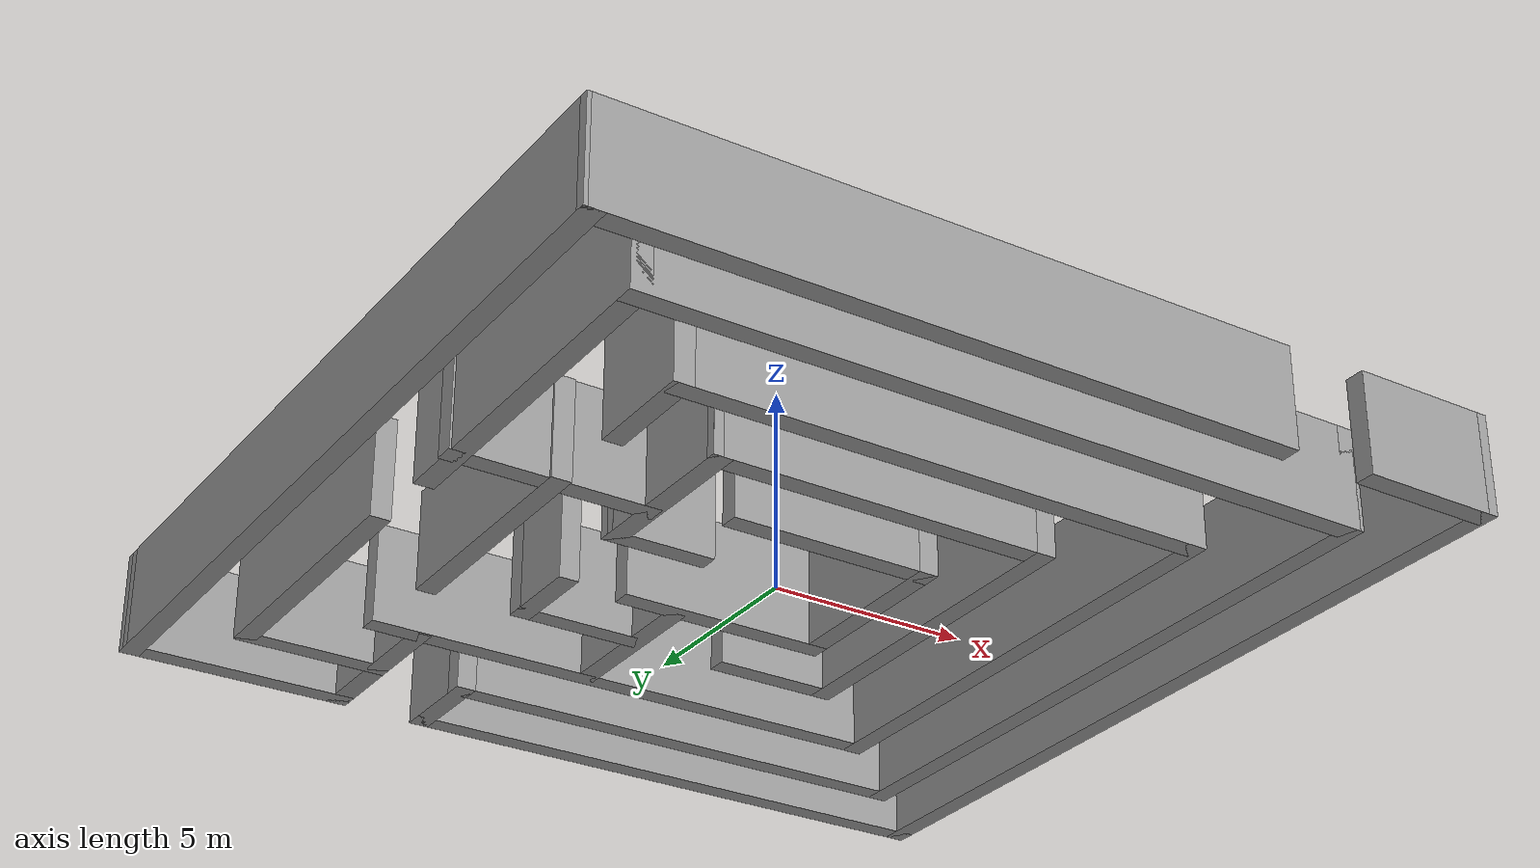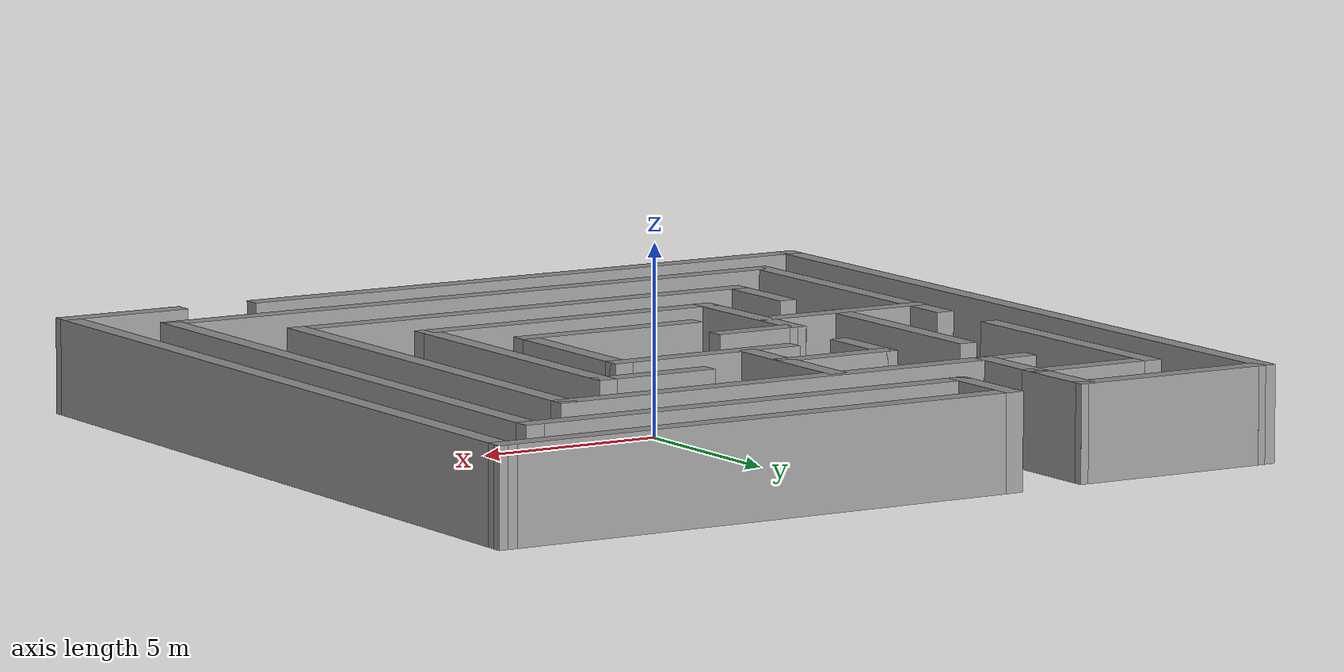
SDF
<?xml version='1.0'?>
<sdf version='1.7'>
  <model name='maze_1'>
    <model name='maze_1'>
      <pose>-0 -0 0 0 -0 0</pose>
      <link name='Wall_1'>
        <collision name='Wall_1_Collision'>
          <geometry>
            <box>
              <size>5.43 0.5 2.5</size>
            </box>
          </geometry>
          <pose>0 0 1.25 0 -0 0</pose>
        </collision>
        <visual name='Wall_1_Visual'>
          <pose>0 0 1.25 0 -0 0</pose>
          <geometry>
            <box>
              <size>5.43 0.5 2.5</size>
            </box>
          </geometry>
          <material>
            <script>
              <uri>file://media/materials/scripts/gazebo.material</uri>
              <name>Gazebo/Grey</name>
            </script>
            <ambient>1 1 1 1</ambient>
          </material>
          <meta>
            <layer>0</layer>
          </meta>
        </visual>
        <pose>0.007699 2.3205 0 0 -0 0</pose>
      </link>
      <link name='Wall_10'>
        <collision name='Wall_10_Collision'>
          <geometry>
            <box>
              <size>2.59977 0.5 2.5</size>
            </box>
          </geometry>
          <pose>0 0 1.25 0 -0 0</pose>
        </collision>
        <visual name='Wall_10_Visual'>
          <pose>0 0 1.25 0 -0 0</pose>
          <geometry>
            <box>
              <size>2.59977 0.5 2.5</size>
            </box>
          </geometry>
          <material>
            <script>
              <uri>file://media/materials/scripts/gazebo.material</uri>
              <name>Gazebo/Grey</name>
            </script>
            <ambient>1 1 1 1</ambient>
          </material>
          <meta>
            <layer>0</layer>
          </meta>
        </visual>
        <pose>-3.2283 -0.2365 0 0 -0 3.14159</pose>
      </link>
      <link name='Wall_11'>
        <collision name='Wall_11_Collision'>
          <geometry>
            <box>
              <size>4.60034 0.5 2.5</size>
            </box>
          </geometry>
          <pose>0 0 1.25 0 -0 0</pose>
        </collision>
        <visual name='Wall_11_Visual'>
          <pose>0 0 1.25 0 -0 0</pose>
          <geometry>
            <box>
              <size>4.60034 0.5 2.5</size>
            </box>
          </geometry>
          <material>
            <script>
              <uri>file://media/materials/scripts/gazebo.material</uri>
              <name>Gazebo/Grey</name>
            </script>
            <ambient>1 1 1 1</ambient>
          </material>
          <meta>
            <layer>0</layer>
          </meta>
        </visual>
        <pose>-4.2518 -2.2865 0 0 -0 -1.55787</pose>
      </link>
      <link name='Wall_12'>
        <collision name='Wall_12_Collision'>
          <geometry>
            <box>
              <size>8.85013 0.5 2.5</size>
            </box>
          </geometry>
          <pose>0 0 1.25 0 -0 0</pose>
        </collision>
        <visual name='Wall_12_Visual'>
          <pose>0 0 1.25 0 -0 0</pose>
          <geometry>
            <box>
              <size>8.85013 0.5 2.5</size>
            </box>
          </geometry>
          <material>
            <script>
              <uri>file://media/materials/scripts/gazebo.material</uri>
              <name>Gazebo/Grey</name>
            </script>
            <ambient>1 1 1 1</ambient>
          </material>
          <meta>
            <layer>0</layer>
          </meta>
        </visual>
        <pose>-0.050301 -4.3365 0 0 -0 0</pose>
      </link>
      <link name='Wall_13'>
        <collision name='Wall_13_Collision'>
          <geometry>
            <box>
              <size>9.10033 0.5 2.5</size>
            </box>
          </geometry>
          <pose>0 0 1.25 0 -0 0</pose>
        </collision>
        <visual name='Wall_13_Visual'>
          <pose>0 0 1.25 0 -0 0</pose>
          <geometry>
            <box>
              <size>9.10033 0.5 2.5</size>
            </box>
          </geometry>
          <material>
            <script>
              <uri>file://media/materials/scripts/gazebo.material</uri>
              <name>Gazebo/Grey</name>
            </script>
            <ambient>1 1 1 1</ambient>
          </material>
          <meta>
            <layer>0</layer>
          </meta>
        </visual>
        <pose>4.1247 -0.0365 0 0 -0 1.5708</pose>
      </link>
      <link name='Wall_14'>
        <collision name='Wall_14_Collision'>
          <geometry>
            <box>
              <size>3.34987 0.5 2.5</size>
            </box>
          </geometry>
          <pose>0 0 1.25 0 -0 0</pose>
        </collision>
        <visual name='Wall_14_Visual'>
          <pose>0 0 1.25 0 -0 0</pose>
          <geometry>
            <box>
              <size>3.34987 0.5 2.5</size>
            </box>
          </geometry>
          <material>
            <script>
              <uri>file://media/materials/scripts/gazebo.material</uri>
              <name>Gazebo/Grey</name>
            </script>
            <ambient>1 1 1 1</ambient>
          </material>
          <meta>
            <layer>0</layer>
          </meta>
        </visual>
        <pose>2.6997 4.2635 0 0 -0 3.14159</pose>
      </link>
      <link name='Wall_16'>
        <collision name='Wall_16_Collision'>
          <geometry>
            <box>
              <size>2.35 0.5 2.5</size>
            </box>
          </geometry>
          <pose>0 0 1.25 0 -0 0</pose>
        </collision>
        <visual name='Wall_16_Visual'>
          <pose>0 0 1.25 0 -0 0</pose>
          <geometry>
            <box>
              <size>2.35 0.5 2.5</size>
            </box>
          </geometry>
          <material>
            <script>
              <uri>file://media/materials/scripts/gazebo.material</uri>
              <name>Gazebo/Grey</name>
            </script>
            <ambient>1 1 1 1</ambient>
          </material>
          <meta>
            <layer>0</layer>
          </meta>
        </visual>
        <pose>-4.1623 3.2805 0 0 -0 1.5708</pose>
      </link>
      <link name='Wall_17'>
        <collision name='Wall_17_Collision'>
          <geometry>
            <box>
              <size>3.35048 0.5 2.5</size>
            </box>
          </geometry>
          <pose>0 0 1.25 0 -0 0</pose>
        </collision>
        <visual name='Wall_17_Visual'>
          <pose>0 0 1.25 0 -0 0</pose>
          <geometry>
            <box>
              <size>3.35048 0.5 2.5</size>
            </box>
          </geometry>
          <material>
            <script>
              <uri>file://media/materials/scripts/gazebo.material</uri>
              <name>Gazebo/Grey</name>
            </script>
            <ambient>1 1 1 1</ambient>
          </material>
          <meta>
            <layer>0</layer>
          </meta>
        </visual>
        <pose>-2.7373 4.2055 0 0 -0 0</pose>
      </link>
      <link name='Wall_19'>
        <collision name='Wall_19_Collision'>
          <geometry>
            <box>
              <size>4.35048 0.5 2.5</size>
            </box>
          </geometry>
          <pose>0 0 1.25 0 -0 0</pose>
        </collision>
        <visual name='Wall_19_Visual'>
          <pose>0 0 1.25 0 -0 0</pose>
          <geometry>
            <box>
              <size>4.35048 0.5 2.5</size>
            </box>
          </geometry>
          <material>
            <script>
              <uri>file://media/materials/scripts/gazebo.material</uri>
              <name>Gazebo/Grey</name>
            </script>
            <ambient>1 1 1 1</ambient>
          </material>
          <meta>
            <layer>0</layer>
          </meta>
        </visual>
        <pose>-1.2263 4.5185 0 0 -0 1.5708</pose>
      </link>
      <link name='Wall_2'>
        <collision name='Wall_2_Collision'>
          <geometry>
            <box>
              <size>5.01231 0.5 2.5</size>
            </box>
          </geometry>
          <pose>0 0 1.25 0 -0 0</pose>
        </collision>
        <visual name='Wall_2_Visual'>
          <pose>0 0 1.25 0 -0 0</pose>
          <geometry>
            <box>
              <size>5.01231 0.5 2.5</size>
            </box>
          </geometry>
          <material>
            <script>
              <uri>file://media/materials/scripts/gazebo.material</uri>
              <name>Gazebo/Grey</name>
            </script>
            <ambient>1 1 1 1</ambient>
          </material>
          <meta>
            <layer>0</layer>
          </meta>
        </visual>
        <pose>2.4727 0.0645 0 0 -0 -1.5708</pose>
      </link>
      <link name='Wall_21'>
        <collision name='Wall_21_Collision'>
          <geometry>
            <box>
              <size>7.35 0.5 2.5</size>
            </box>
          </geometry>
          <pose>0 0 1.25 0 -0 0</pose>
        </collision>
        <visual name='Wall_21_Visual'>
          <pose>0 0 1.25 0 -0 0</pose>
          <geometry>
            <box>
              <size>7.35 0.5 2.5</size>
            </box>
          </geometry>
          <material>
            <script>
              <uri>file://media/materials/scripts/gazebo.material</uri>
              <name>Gazebo/Grey</name>
            </script>
            <ambient>1 1 1 1</ambient>
          </material>
          <meta>
            <layer>0</layer>
          </meta>
        </visual>
        <pose>-9.0023 5.3845 0 0 -0 1.5708</pose>
      </link>
      <link name='Wall_22'>
        <collision name='Wall_22_Collision'>
          <geometry>
            <box>
              <size>3.85 0.5 2.5</size>
            </box>
          </geometry>
          <pose>0 0 1.25 0 -0 0</pose>
        </collision>
        <visual name='Wall_22_Visual'>
          <pose>0 0 1.25 0 -0 0</pose>
          <geometry>
            <box>
              <size>3.85 0.5 2.5</size>
            </box>
          </geometry>
          <material>
            <script>
              <uri>file://media/materials/scripts/gazebo.material</uri>
              <name>Gazebo/Grey</name>
            </script>
            <ambient>1 1 1 1</ambient>
          </material>
          <meta>
            <layer>0</layer>
          </meta>
        </visual>
        <pose>-7.3273 8.8095 0 0 -0 0</pose>
      </link>
      <link name='Wall_23'>
        <collision name='Wall_23_Collision'>
          <geometry>
            <box>
              <size>2.60032 0.5 2.5</size>
            </box>
          </geometry>
          <pose>0 0 1.25 0 -0 0</pose>
        </collision>
        <visual name='Wall_23_Visual'>
          <pose>0 0 1.25 0 -0 0</pose>
          <geometry>
            <box>
              <size>2.60032 0.5 2.5</size>
            </box>
          </geometry>
          <material>
            <script>
              <uri>file://media/materials/scripts/gazebo.material</uri>
              <name>Gazebo/Grey</name>
            </script>
            <ambient>1 1 1 1</ambient>
          </material>
          <meta>
            <layer>0</layer>
          </meta>
        </visual>
        <pose>-5.6523 7.7595 0 0 -0 -1.5708</pose>
      </link>
      <link name='Wall_25'>
        <collision name='Wall_25_Collision'>
          <geometry>
            <box>
              <size>2.59969 0.5 2.5</size>
            </box>
          </geometry>
          <pose>0 0 1.25 0 -0 0</pose>
        </collision>
        <visual name='Wall_25_Visual'>
          <pose>0 0 1.25 0 -0 0</pose>
          <geometry>
            <box>
              <size>2.59969 0.5 2.5</size>
            </box>
          </geometry>
          <material>
            <script>
              <uri>file://media/materials/scripts/gazebo.material</uri>
              <name>Gazebo/Grey</name>
            </script>
            <ambient>1 1 1 1</ambient>
          </material>
          <meta>
            <layer>0</layer>
          </meta>
        </visual>
        <pose>-5.6523 9.8595 0 0 -0 1.5708</pose>
      </link>
      <link name='Wall_26'>
        <collision name='Wall_26_Collision'>
          <geometry>
            <box>
              <size>5.82705 0.5 2.5</size>
            </box>
          </geometry>
          <pose>0 0 1.25 0 -0 0</pose>
        </collision>
        <visual name='Wall_26_Visual'>
          <pose>0 0 1.25 0 -0 0</pose>
          <geometry>
            <box>
              <size>5.82705 0.5 2.5</size>
            </box>
          </geometry>
          <material>
            <script>
              <uri>file://media/materials/scripts/gazebo.material</uri>
              <name>Gazebo/Grey</name>
            </script>
            <ambient>1 1 1 1</ambient>
          </material>
          <meta>
            <layer>0</layer>
          </meta>
        </visual>
        <pose>-8.3158 10.921 0 0 -0 3.13727</pose>
      </link>
      <link name='Wall_27'>
        <collision name='Wall_27_Collision'>
          <geometry>
            <box>
              <size>22.3506 0.5 2.5</size>
            </box>
          </geometry>
          <pose>0 0 1.25 0 -0 0</pose>
        </collision>
        <visual name='Wall_27_Visual'>
          <pose>0 0 1.25 0 -0 0</pose>
          <geometry>
            <box>
              <size>22.3506 0.5 2.5</size>
            </box>
          </geometry>
          <material>
            <script>
              <uri>file://media/materials/scripts/gazebo.material</uri>
              <name>Gazebo/Grey</name>
            </script>
            <ambient>1 1 1 1</ambient>
          </material>
          <meta>
            <layer>0</layer>
          </meta>
        </visual>
        <pose>-10.9793 0.007 0 0 -0 -1.5708</pose>
      </link>
      <link name='Wall_28'>
        <collision name='Wall_28_Collision'>
          <geometry>
            <box>
              <size>16.8271 0.5 2.5</size>
            </box>
          </geometry>
          <pose>0 0 1.25 0 -0 0</pose>
        </collision>
        <visual name='Wall_28_Visual'>
          <pose>0 0 1.25 0 -0 0</pose>
          <geometry>
            <box>
              <size>16.8271 0.5 2.5</size>
            </box>
          </geometry>
          <material>
            <script>
              <uri>file://media/materials/scripts/gazebo.material</uri>
              <name>Gazebo/Grey</name>
            </script>
            <ambient>1 1 1 1</ambient>
          </material>
          <meta>
            <layer>0</layer>
          </meta>
        </visual>
        <pose>-2.8158 -10.9295 0 0 -0 -0.001347</pose>
      </link>
      <link name='Wall_3'>
        <collision name='Wall_3_Collision'>
          <geometry>
            <box>
              <size>5.35 0.5 2.5</size>
            </box>
          </geometry>
          <pose>0 0 1.25 0 -0 0</pose>
        </collision>
        <visual name='Wall_3_Visual'>
          <pose>0 0 1.25 0 -0 0</pose>
          <geometry>
            <box>
              <size>5.35 0.5 2.5</size>
            </box>
          </geometry>
          <material>
            <script>
              <uri>file://media/materials/scripts/gazebo.material</uri>
              <name>Gazebo/Grey</name>
            </script>
            <ambient>1 1 1 1</ambient>
          </material>
          <meta>
            <layer>0</layer>
          </meta>
        </visual>
        <pose>0.047699 -2.1915 0 0 -0 3.14159</pose>
      </link>
      <link name='Wall_30'>
        <collision name='Wall_30_Collision'>
          <geometry>
            <box>
              <size>9.1 0.5 2.5</size>
            </box>
          </geometry>
          <pose>0 0 1.25 0 -0 0</pose>
        </collision>
        <visual name='Wall_30_Visual'>
          <pose>0 0 1.25 0 -0 0</pose>
          <geometry>
            <box>
              <size>9.1 0.5 2.5</size>
            </box>
          </geometry>
          <material>
            <script>
              <uri>file://media/materials/scripts/gazebo.material</uri>
              <name>Gazebo/Grey</name>
            </script>
            <ambient>1 1 1 1</ambient>
          </material>
          <meta>
            <layer>0</layer>
          </meta>
        </visual>
        <pose>-8.8703 -4.6415 0 0 -0 -1.5708</pose>
      </link>
      <link name='Wall_31'>
        <collision name='Wall_31_Collision'>
          <geometry>
            <box>
              <size>18.35 0.5 2.5</size>
            </box>
          </geometry>
          <pose>0 0 1.25 0 -0 0</pose>
        </collision>
        <visual name='Wall_31_Visual'>
          <pose>0 0 1.25 0 -0 0</pose>
          <geometry>
            <box>
              <size>18.35 0.5 2.5</size>
            </box>
          </geometry>
          <material>
            <script>
              <uri>file://media/materials/scripts/gazebo.material</uri>
              <name>Gazebo/Grey</name>
            </script>
            <ambient>1 1 1 1</ambient>
          </material>
          <meta>
            <layer>0</layer>
          </meta>
        </visual>
        <pose>0.054699 -8.9415 0 0 -0 0</pose>
      </link>
      <link name='Wall_32'>
        <collision name='Wall_32_Collision'>
          <geometry>
            <box>
              <size>18.35 0.5 2.5</size>
            </box>
          </geometry>
          <pose>0 0 1.25 0 -0 0</pose>
        </collision>
        <visual name='Wall_32_Visual'>
          <pose>0 0 1.25 0 -0 0</pose>
          <geometry>
            <box>
              <size>18.35 0.5 2.5</size>
            </box>
          </geometry>
          <material>
            <script>
              <uri>file://media/materials/scripts/gazebo.material</uri>
              <name>Gazebo/Grey</name>
            </script>
            <ambient>1 1 1 1</ambient>
          </material>
          <meta>
            <layer>0</layer>
          </meta>
        </visual>
        <pose>8.9797 -0.0165 0 0 -0 1.5708</pose>
      </link>
      <link name='Wall_33'>
        <collision name='Wall_33_Collision'>
          <geometry>
            <box>
              <size>12.85 0.5 2.5</size>
            </box>
          </geometry>
          <pose>0 0 1.25 0 -0 0</pose>
        </collision>
        <visual name='Wall_33_Visual'>
          <pose>0 0 1.25 0 -0 0</pose>
          <geometry>
            <box>
              <size>12.85 0.5 2.5</size>
            </box>
          </geometry>
          <material>
            <script>
              <uri>file://media/materials/scripts/gazebo.material</uri>
              <name>Gazebo/Grey</name>
            </script>
            <ambient>1 1 1 1</ambient>
          </material>
          <meta>
            <layer>0</layer>
          </meta>
        </visual>
        <pose>2.8047 8.9085 0 0 -0 3.14159</pose>
      </link>
      <link name='Wall_34'>
        <collision name='Wall_34_Collision'>
          <geometry>
            <box>
              <size>2.6 0.5 2.5</size>
            </box>
          </geometry>
          <pose>0 0 1.25 0 -0 0</pose>
        </collision>
        <visual name='Wall_34_Visual'>
          <pose>0 0 1.25 0 -0 0</pose>
          <geometry>
            <box>
              <size>2.6 0.5 2.5</size>
            </box>
          </geometry>
          <material>
            <script>
              <uri>file://media/materials/scripts/gazebo.material</uri>
              <name>Gazebo/Grey</name>
            </script>
            <ambient>1 1 1 1</ambient>
          </material>
          <meta>
            <layer>0</layer>
          </meta>
        </visual>
        <pose>-3.3703 9.9585 0 0 -0 1.5708</pose>
      </link>
      <link name='Wall_35'>
        <collision name='Wall_35_Collision'>
          <geometry>
            <box>
              <size>14.85 0.5 2.5</size>
            </box>
          </geometry>
          <pose>0 0 1.25 0 -0 0</pose>
        </collision>
        <visual name='Wall_35_Visual'>
          <pose>0 0 1.25 0 -0 0</pose>
          <geometry>
            <box>
              <size>14.85 0.5 2.5</size>
            </box>
          </geometry>
          <material>
            <script>
              <uri>file://media/materials/scripts/gazebo.material</uri>
              <name>Gazebo/Grey</name>
            </script>
            <ambient>1 1 1 1</ambient>
          </material>
          <meta>
            <layer>0</layer>
          </meta>
        </visual>
        <pose>3.8047 11.0085 0 0 -0 0</pose>
      </link>
      <link name='Wall_36'>
        <collision name='Wall_36_Collision'>
          <geometry>
            <box>
              <size>22.5171 0.5 2.5</size>
            </box>
          </geometry>
          <pose>0 0 1.25 0 -0 0</pose>
        </collision>
        <visual name='Wall_36_Visual'>
          <pose>0 0 1.25 0 -0 0</pose>
          <geometry>
            <box>
              <size>22.5171 0.5 2.5</size>
            </box>
          </geometry>
          <material>
            <script>
              <uri>file://media/materials/scripts/gazebo.material</uri>
              <name>Gazebo/Grey</name>
            </script>
            <ambient>1 1 1 1</ambient>
          </material>
          <meta>
            <layer>0</layer>
          </meta>
        </visual>
        <pose>10.9497 -0 0 0 -0 -1.57352</pose>
      </link>
      <link name='Wall_37'>
        <collision name='Wall_37_Collision'>
          <geometry>
            <box>
              <size>3.60011 0.5 2.5</size>
            </box>
          </geometry>
          <pose>0 0 1.25 0 -0 0</pose>
        </collision>
        <visual name='Wall_37_Visual'>
          <pose>0 0 1.25 0 -0 0</pose>
          <geometry>
            <box>
              <size>3.60011 0.5 2.5</size>
            </box>
          </geometry>
          <material>
            <script>
              <uri>file://media/materials/scripts/gazebo.material</uri>
              <name>Gazebo/Grey</name>
            </script>
            <ambient>1 1 1 1</ambient>
          </material>
          <meta>
            <layer>0</layer>
          </meta>
        </visual>
        <pose>9.3697 -11.0085 0 0 -0 3.14159</pose>
      </link>
      <link name='Wall_39'>
        <collision name='Wall_39_Collision'>
          <geometry>
            <box>
              <size>5.10048 0.5 2.5</size>
            </box>
          </geometry>
          <pose>0 0 1.25 0 -0 0</pose>
        </collision>
        <visual name='Wall_39_Visual'>
          <pose>0 0 1.25 0 -0 0</pose>
          <geometry>
            <box>
              <size>5.10048 0.5 2.5</size>
            </box>
          </geometry>
          <material>
            <script>
              <uri>file://media/materials/scripts/gazebo.material</uri>
              <name>Gazebo/Grey</name>
            </script>
            <ambient>1 1 1 1</ambient>
          </material>
          <meta>
            <layer>0</layer>
          </meta>
        </visual>
        <pose>-6.6233 -1.6115 0 0 -0 0</pose>
      </link>
      <link name='Wall_41'>
        <collision name='Wall_41_Collision'>
          <geometry>
            <box>
              <size>6.34952 0.5 2.5</size>
            </box>
          </geometry>
          <pose>0 0 1.25 0 -0 0</pose>
        </collision>
        <visual name='Wall_41_Visual'>
          <pose>0 0 1.25 0 -0 0</pose>
          <geometry>
            <box>
              <size>6.34952 0.5 2.5</size>
            </box>
          </geometry>
          <material>
            <script>
              <uri>file://media/materials/scripts/gazebo.material</uri>
              <name>Gazebo/Grey</name>
            </script>
            <ambient>1 1 1 1</ambient>
          </material>
          <meta>
            <layer>0</layer>
          </meta>
        </visual>
        <pose>-6.5683 1.2555 0 0 -0 -1.5708</pose>
      </link>
      <link name='Wall_5'>
        <collision name='Wall_5_Collision'>
          <geometry>
            <box>
              <size>13.8503 0.5 2.5</size>
            </box>
          </geometry>
          <pose>0 0 1.25 0 -0 0</pose>
        </collision>
        <visual name='Wall_5_Visual'>
          <pose>0 0 1.25 0 -0 0</pose>
          <geometry>
            <box>
              <size>13.8503 0.5 2.5</size>
            </box>
          </geometry>
          <material>
            <script>
              <uri>file://media/materials/scripts/gazebo.material</uri>
              <name>Gazebo/Grey</name>
            </script>
            <ambient>1 1 1 1</ambient>
          </material>
          <meta>
            <layer>0</layer>
          </meta>
        </visual>
        <pose>-0.026301 6.6405 0 0 -0 0</pose>
      </link>
      <link name='Wall_6'>
        <collision name='Wall_6_Collision'>
          <geometry>
            <box>
              <size>13.5997 0.5 2.5</size>
            </box>
          </geometry>
          <pose>0 0 1.25 0 -0 0</pose>
        </collision>
        <visual name='Wall_6_Visual'>
          <pose>0 0 1.25 0 -0 0</pose>
          <geometry>
            <box>
              <size>13.5997 0.5 2.5</size>
            </box>
          </geometry>
          <material>
            <script>
              <uri>file://media/materials/scripts/gazebo.material</uri>
              <name>Gazebo/Grey</name>
            </script>
            <ambient>1 1 1 1</ambient>
          </material>
          <meta>
            <layer>0</layer>
          </meta>
        </visual>
        <pose>6.6487 0.0905 0 0 -0 -1.5708</pose>
      </link>
      <link name='Wall_7'>
        <collision name='Wall_7_Collision'>
          <geometry>
            <box>
              <size>13.5997 0.5 2.5</size>
            </box>
          </geometry>
          <pose>0 0 1.25 0 -0 0</pose>
        </collision>
        <visual name='Wall_7_Visual'>
          <pose>0 0 1.25 0 -0 0</pose>
          <geometry>
            <box>
              <size>13.5997 0.5 2.5</size>
            </box>
          </geometry>
          <material>
            <script>
              <uri>file://media/materials/scripts/gazebo.material</uri>
              <name>Gazebo/Grey</name>
            </script>
            <ambient>1 1 1 1</ambient>
          </material>
          <meta>
            <layer>0</layer>
          </meta>
        </visual>
        <pose>0.098699 -6.4595 0 0 -0 3.14159</pose>
      </link>
      <link name='Wall_8'>
        <collision name='Wall_8_Collision'>
          <geometry>
            <box>
              <size>2.85033 0.5 2.5</size>
            </box>
          </geometry>
          <pose>0 0 1.25 0 -0 0</pose>
        </collision>
        <visual name='Wall_8_Visual'>
          <pose>0 0 1.25 0 -0 0</pose>
          <geometry>
            <box>
              <size>2.85033 0.5 2.5</size>
            </box>
          </geometry>
          <material>
            <script>
              <uri>file://media/materials/scripts/gazebo.material</uri>
              <name>Gazebo/Grey</name>
            </script>
            <ambient>1 1 1 1</ambient>
          </material>
          <meta>
            <layer>0</layer>
          </meta>
        </visual>
        <pose>-6.4513 -5.2845 0 0 -0 1.5708</pose>
      </link>
      <static>1</static>
    </model>
    <static>0</static>
    <allow_auto_disable>1</allow_auto_disable>
  </model>
</sdf>
